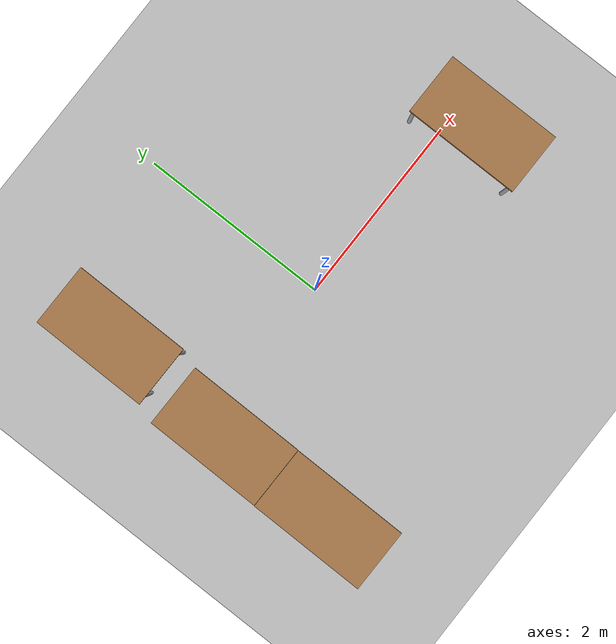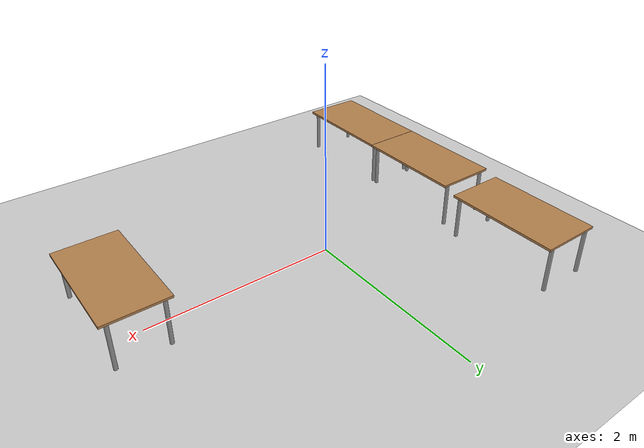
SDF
<sdf version="1.7">
 <world name="default">
  <model name="ground_plane">
   <static>1</static>
   <link name="link">
    <collision name="collision">
     <geometry><plane><normal>0 0 1</normal><size>100 100</size></plane></geometry>
     <surface>
      <contact><collide_bitmask>65535</collide_bitmask></contact>
      <friction><ode><mu>100</mu><mu2>50</mu2></ode></friction>
     </surface>
    </collision>
    <visual name="visual">
     <cast_shadows>0</cast_shadows>
     <geometry><plane><normal>0 0 1</normal><size>100 100</size></plane></geometry>
     <material>
      <script><uri>file://media/materials/scripts/gazebo.material</uri><name>Gazebo/Grey</name></script>
     </material>
    </visual>
   </link>
  </model>
  <model name="table_for_pc_clone_1">
   <link name="link">
    <inertial>
     <mass>1</mass>
     <inertia><ixx>1</ixx><ixy>0</ixy><ixz>0</ixz><iyy>1</iyy><iyz>0</iyz><izz>1</izz></inertia>
    </inertial>
    <visual name="back_right_leg">
     <pose>-0.57 -0.25 0.25 0 -0 0</pose>
     <geometry><cylinder><radius>0.02</radius><length>0.5</length></cylinder></geometry>
     <material>
      <script><uri>file://media/materials/scripts/gazebo.material</uri><name>Gazebo/Grey</name></script>
      <shader type="vertex"><normal_map>__default__</normal_map></shader>
      <ambient>0.3 0.3 0.3 1</ambient>
      <diffuse>0.7 0.7 0.7 1</diffuse>
      <specular>0.01 0.01 0.01 1</specular>
      <emissive>0 0 0 1</emissive>
     </material>
    </visual>
    <visual name="back_left_leg">
     <pose>-0.57 0.25 0.25 0 -0 0</pose>
     <geometry><cylinder><radius>0.02</radius><length>0.5</length></cylinder></geometry>
     <material>
      <script><uri>file://media/materials/scripts/gazebo.material</uri><name>Gazebo/Grey</name></script>
      <shader type="vertex"><normal_map>__default__</normal_map></shader>
      <ambient>0.3 0.3 0.3 1</ambient>
      <diffuse>0.7 0.7 0.7 1</diffuse>
      <specular>0.01 0.01 0.01 1</specular>
      <emissive>0 0 0 1</emissive>
     </material>
    </visual>
    <visual name="front_right_leg">
     <pose>0.57 -0.25 0.25 0 -0 0</pose>
     <geometry><cylinder><radius>0.02</radius><length>0.5</length></cylinder></geometry>
     <material>
      <script><uri>file://media/materials/scripts/gazebo.material</uri><name>Gazebo/Grey</name></script>
      <shader type="vertex"><normal_map>__default__</normal_map></shader>
      <ambient>0.3 0.3 0.3 1</ambient>
      <diffuse>0.7 0.7 0.7 1</diffuse>
      <specular>0.01 0.01 0.01 1</specular>
      <emissive>0 0 0 1</emissive>
     </material>
    </visual>
    <visual name="visual1">
     <pose>0 0 0.5 0 -0 0</pose>
     <geometry><box><size>1.2 0.64 0.024</size></box></geometry>
     <material>
      <script><uri>file://media/materials/scripts/gazebo.material</uri><name>Gazebo/Wood</name></script>
      <shader type="vertex"><normal_map>__default__</normal_map></shader>
      <ambient>1 1 1 1</ambient>
      <diffuse>1 1 1 1</diffuse>
      <specular>0.2 0.2 0.2 1</specular>
      <emissive>0 0 0 1</emissive>
     </material>
    </visual>
    <visual name="front_left_leg">
     <pose>0.57 0.25 0.25 0 -0 0</pose>
     <geometry><cylinder><radius>0.02</radius><length>0.5</length></cylinder></geometry>
     <material>
      <script><uri>file://media/materials/scripts/gazebo.material</uri><name>Gazebo/Grey</name></script>
      <shader type="vertex"><normal_map>__default__</normal_map></shader>
      <ambient>0.3 0.3 0.3 1</ambient>
      <diffuse>0.7 0.7 0.7 1</diffuse>
      <specular>0.01 0.01 0.01 1</specular>
      <emissive>0 0 0 1</emissive>
     </material>
    </visual>
    <collision name="surface">
     <pose>0 0 0.5 0 -0 0</pose>
     <geometry><box><size>1.2 0.64 0.024</size></box></geometry>
     <surface>
      <friction>
       <ode><mu>0.6</mu><mu2>0.6</mu2><fdir1>0 0 0</fdir1><slip1>0</slip1><slip2>0</slip2></ode>
       <torsional>
        <coefficient>1</coefficient>
        <patch_radius>0</patch_radius>
        <surface_radius>0</surface_radius>
        <use_patch_radius>1</use_patch_radius>
        <ode><slip>0</slip></ode>
       </torsional>
      </friction>
      <bounce><restitution_coefficient>0</restitution_coefficient><threshold>1e+06</threshold></bounce>
      <contact>
       <collide_without_contact>0</collide_without_contact>
       <collide_without_contact_bitmask>1</collide_without_contact_bitmask>
       <collide_bitmask>1</collide_bitmask>
       <ode>
        <soft_cfm>0</soft_cfm>
        <soft_erp>0.2</soft_erp>
        <kp>1e+13</kp>
        <kd>1</kd>
        <max_vel>0.01</max_vel>
        <min_depth>0</min_depth>
       </ode>
       <bullet>
        <split_impulse>1</split_impulse>
        <split_impulse_penetration_threshold>-0.01</split_impulse_penetration_threshold>
        <soft_cfm>0</soft_cfm>
        <soft_erp>0.2</soft_erp>
        <kp>1e+13</kp>
        <kd>1</kd>
       </bullet>
      </contact>
     </surface>
    </collision>
    <collision name="back_right_leg">
     <pose>-0.57 -0.25 0.25 0 -0 0</pose>
     <geometry><cylinder><radius>0.02</radius><length>0.5</length></cylinder></geometry>
     <surface>
      <friction>
       <ode><mu>1</mu><mu2>1</mu2><fdir1>0 0 0</fdir1><slip1>0</slip1><slip2>0</slip2></ode>
       <torsional>
        <coefficient>1</coefficient>
        <patch_radius>0</patch_radius>
        <surface_radius>0</surface_radius>
        <use_patch_radius>1</use_patch_radius>
        <ode><slip>0</slip></ode>
       </torsional>
      </friction>
      <bounce><restitution_coefficient>0</restitution_coefficient><threshold>1e+06</threshold></bounce>
      <contact>
       <collide_without_contact>0</collide_without_contact>
       <collide_without_contact_bitmask>1</collide_without_contact_bitmask>
       <collide_bitmask>1</collide_bitmask>
       <ode>
        <soft_cfm>0</soft_cfm>
        <soft_erp>0.2</soft_erp>
        <kp>1e+13</kp>
        <kd>1</kd>
        <max_vel>0.01</max_vel>
        <min_depth>0</min_depth>
       </ode>
       <bullet>
        <split_impulse>1</split_impulse>
        <split_impulse_penetration_threshold>-0.01</split_impulse_penetration_threshold>
        <soft_cfm>0</soft_cfm>
        <soft_erp>0.2</soft_erp>
        <kp>1e+13</kp>
        <kd>1</kd>
       </bullet>
      </contact>
     </surface>
    </collision>
    <collision name="front_right_leg">
     <pose>0.57 -0.25 0.25 0 -0 0</pose>
     <geometry><cylinder><radius>0.02</radius><length>0.5</length></cylinder></geometry>
     <surface>
      <friction>
       <ode><mu>1</mu><mu2>1</mu2><fdir1>0 0 0</fdir1><slip1>0</slip1><slip2>0</slip2></ode>
       <torsional>
        <coefficient>1</coefficient>
        <patch_radius>0</patch_radius>
        <surface_radius>0</surface_radius>
        <use_patch_radius>1</use_patch_radius>
        <ode><slip>0</slip></ode>
       </torsional>
      </friction>
      <bounce><restitution_coefficient>0</restitution_coefficient><threshold>1e+06</threshold></bounce>
      <contact>
       <collide_without_contact>0</collide_without_contact>
       <collide_without_contact_bitmask>1</collide_without_contact_bitmask>
       <collide_bitmask>1</collide_bitmask>
       <ode>
        <soft_cfm>0</soft_cfm>
        <soft_erp>0.2</soft_erp>
        <kp>1e+13</kp>
        <kd>1</kd>
        <max_vel>0.01</max_vel>
        <min_depth>0</min_depth>
       </ode>
       <bullet>
        <split_impulse>1</split_impulse>
        <split_impulse_penetration_threshold>-0.01</split_impulse_penetration_threshold>
        <soft_cfm>0</soft_cfm>
        <soft_erp>0.2</soft_erp>
        <kp>1e+13</kp>
        <kd>1</kd>
       </bullet>
      </contact>
     </surface>
    </collision>
    <collision name="back_left_leg">
     <pose>-0.57 0.25 0.25 0 -0 0</pose>
     <geometry><cylinder><radius>0.02</radius><length>0.5</length></cylinder></geometry>
     <surface>
      <friction>
       <ode><mu>1</mu><mu2>1</mu2><fdir1>0 0 0</fdir1><slip1>0</slip1><slip2>0</slip2></ode>
       <torsional>
        <coefficient>1</coefficient>
        <patch_radius>0</patch_radius>
        <surface_radius>0</surface_radius>
        <use_patch_radius>1</use_patch_radius>
        <ode><slip>0</slip></ode>
       </torsional>
      </friction>
      <bounce><restitution_coefficient>0</restitution_coefficient><threshold>1e+06</threshold></bounce>
      <contact>
       <collide_without_contact>0</collide_without_contact>
       <collide_without_contact_bitmask>1</collide_without_contact_bitmask>
       <collide_bitmask>1</collide_bitmask>
       <ode>
        <soft_cfm>0</soft_cfm>
        <soft_erp>0.2</soft_erp>
        <kp>1e+13</kp>
        <kd>1</kd>
        <max_vel>0.01</max_vel>
        <min_depth>0</min_depth>
       </ode>
       <bullet>
        <split_impulse>1</split_impulse>
        <split_impulse_penetration_threshold>-0.01</split_impulse_penetration_threshold>
        <soft_cfm>0</soft_cfm>
        <soft_erp>0.2</soft_erp>
        <kp>1e+13</kp>
        <kd>1</kd>
       </bullet>
      </contact>
     </surface>
    </collision>
    <collision name="front_left_leg">
     <pose>0.57 0.25 0.25 0 -0 0</pose>
     <geometry><cylinder><radius>0.02</radius><length>0.5</length></cylinder></geometry>
     <surface>
      <friction>
       <ode><mu>1</mu><mu2>1</mu2><fdir1>0 0 0</fdir1><slip1>0</slip1><slip2>0</slip2></ode>
       <torsional>
        <coefficient>1</coefficient>
        <patch_radius>0</patch_radius>
        <surface_radius>0</surface_radius>
        <use_patch_radius>1</use_patch_radius>
        <ode><slip>0</slip></ode>
       </torsional>
      </friction>
      <bounce><restitution_coefficient>0</restitution_coefficient><threshold>1e+06</threshold></bounce>
      <contact>
       <collide_without_contact>0</collide_without_contact>
       <collide_without_contact_bitmask>1</collide_without_contact_bitmask>
       <collide_bitmask>1</collide_bitmask>
       <ode>
        <soft_cfm>0</soft_cfm>
        <soft_erp>0.2</soft_erp>
        <kp>1e+13</kp>
        <kd>1</kd>
        <max_vel>0.01</max_vel>
        <min_depth>0</min_depth>
       </ode>
       <bullet>
        <split_impulse>1</split_impulse>
        <split_impulse_penetration_threshold>-0.01</split_impulse_penetration_threshold>
        <soft_cfm>0</soft_cfm>
        <soft_erp>0.2</soft_erp>
        <kp>1e+13</kp>
        <kd>1</kd>
       </bullet>
      </contact>
     </surface>
    </collision>
   </link>
   <static>1</static>
   <pose>-1.51123 1.20137 0 0 -0 1.56413</pose>
  </model>
  <model name="table_for_pc_clone_2">
   <link name="link">
    <inertial>
     <mass>1</mass>
     <inertia><ixx>1</ixx><ixy>0</ixy><ixz>0</ixz><iyy>1</iyy><iyz>0</iyz><izz>1</izz></inertia>
    </inertial>
    <visual name="back_right_leg">
     <pose>-0.57 -0.25 0.25 0 -0 0</pose>
     <geometry><cylinder><radius>0.02</radius><length>0.5</length></cylinder></geometry>
     <material>
      <script><uri>file://media/materials/scripts/gazebo.material</uri><name>Gazebo/Grey</name></script>
      <shader type="vertex"><normal_map>__default__</normal_map></shader>
      <ambient>0.3 0.3 0.3 1</ambient>
      <diffuse>0.7 0.7 0.7 1</diffuse>
      <specular>0.01 0.01 0.01 1</specular>
      <emissive>0 0 0 1</emissive>
     </material>
    </visual>
    <visual name="back_left_leg">
     <pose>-0.57 0.25 0.25 0 -0 0</pose>
     <geometry><cylinder><radius>0.02</radius><length>0.5</length></cylinder></geometry>
     <material>
      <script><uri>file://media/materials/scripts/gazebo.material</uri><name>Gazebo/Grey</name></script>
      <shader type="vertex"><normal_map>__default__</normal_map></shader>
      <ambient>0.3 0.3 0.3 1</ambient>
      <diffuse>0.7 0.7 0.7 1</diffuse>
      <specular>0.01 0.01 0.01 1</specular>
      <emissive>0 0 0 1</emissive>
     </material>
    </visual>
    <visual name="front_right_leg">
     <pose>0.57 -0.25 0.25 0 -0 0</pose>
     <geometry><cylinder><radius>0.02</radius><length>0.5</length></cylinder></geometry>
     <material>
      <script><uri>file://media/materials/scripts/gazebo.material</uri><name>Gazebo/Grey</name></script>
      <shader type="vertex"><normal_map>__default__</normal_map></shader>
      <ambient>0.3 0.3 0.3 1</ambient>
      <diffuse>0.7 0.7 0.7 1</diffuse>
      <specular>0.01 0.01 0.01 1</specular>
      <emissive>0 0 0 1</emissive>
     </material>
    </visual>
    <visual name="visual1">
     <pose>0 0 0.5 0 -0 0</pose>
     <geometry><box><size>1.2 0.64 0.024</size></box></geometry>
     <material>
      <script><uri>file://media/materials/scripts/gazebo.material</uri><name>Gazebo/Wood</name></script>
      <shader type="vertex"><normal_map>__default__</normal_map></shader>
      <ambient>1 1 1 1</ambient>
      <diffuse>1 1 1 1</diffuse>
      <specular>0.2 0.2 0.2 1</specular>
      <emissive>0 0 0 1</emissive>
     </material>
    </visual>
    <visual name="front_left_leg">
     <pose>0.57 0.25 0.25 0 -0 0</pose>
     <geometry><cylinder><radius>0.02</radius><length>0.5</length></cylinder></geometry>
     <material>
      <script><uri>file://media/materials/scripts/gazebo.material</uri><name>Gazebo/Grey</name></script>
      <shader type="vertex"><normal_map>__default__</normal_map></shader>
      <ambient>0.3 0.3 0.3 1</ambient>
      <diffuse>0.7 0.7 0.7 1</diffuse>
      <specular>0.01 0.01 0.01 1</specular>
      <emissive>0 0 0 1</emissive>
     </material>
    </visual>
    <collision name="surface">
     <pose>0 0 0.5 0 -0 0</pose>
     <geometry><box><size>1.2 0.64 0.024</size></box></geometry>
     <surface>
      <friction>
       <ode><mu>0.6</mu><mu2>0.6</mu2><fdir1>0 0 0</fdir1><slip1>0</slip1><slip2>0</slip2></ode>
       <torsional>
        <coefficient>1</coefficient>
        <patch_radius>0</patch_radius>
        <surface_radius>0</surface_radius>
        <use_patch_radius>1</use_patch_radius>
        <ode><slip>0</slip></ode>
       </torsional>
      </friction>
      <bounce><restitution_coefficient>0</restitution_coefficient><threshold>1e+06</threshold></bounce>
      <contact>
       <collide_without_contact>0</collide_without_contact>
       <collide_without_contact_bitmask>1</collide_without_contact_bitmask>
       <collide_bitmask>1</collide_bitmask>
       <ode>
        <soft_cfm>0</soft_cfm>
        <soft_erp>0.2</soft_erp>
        <kp>1e+13</kp>
        <kd>1</kd>
        <max_vel>0.01</max_vel>
        <min_depth>0</min_depth>
       </ode>
       <bullet>
        <split_impulse>1</split_impulse>
        <split_impulse_penetration_threshold>-0.01</split_impulse_penetration_threshold>
        <soft_cfm>0</soft_cfm>
        <soft_erp>0.2</soft_erp>
        <kp>1e+13</kp>
        <kd>1</kd>
       </bullet>
      </contact>
     </surface>
    </collision>
    <collision name="back_right_leg">
     <pose>-0.57 -0.25 0.25 0 -0 0</pose>
     <geometry><cylinder><radius>0.02</radius><length>0.5</length></cylinder></geometry>
     <surface>
      <friction>
       <ode><mu>1</mu><mu2>1</mu2><fdir1>0 0 0</fdir1><slip1>0</slip1><slip2>0</slip2></ode>
       <torsional>
        <coefficient>1</coefficient>
        <patch_radius>0</patch_radius>
        <surface_radius>0</surface_radius>
        <use_patch_radius>1</use_patch_radius>
        <ode><slip>0</slip></ode>
       </torsional>
      </friction>
      <bounce><restitution_coefficient>0</restitution_coefficient><threshold>1e+06</threshold></bounce>
      <contact>
       <collide_without_contact>0</collide_without_contact>
       <collide_without_contact_bitmask>1</collide_without_contact_bitmask>
       <collide_bitmask>1</collide_bitmask>
       <ode>
        <soft_cfm>0</soft_cfm>
        <soft_erp>0.2</soft_erp>
        <kp>1e+13</kp>
        <kd>1</kd>
        <max_vel>0.01</max_vel>
        <min_depth>0</min_depth>
       </ode>
       <bullet>
        <split_impulse>1</split_impulse>
        <split_impulse_penetration_threshold>-0.01</split_impulse_penetration_threshold>
        <soft_cfm>0</soft_cfm>
        <soft_erp>0.2</soft_erp>
        <kp>1e+13</kp>
        <kd>1</kd>
       </bullet>
      </contact>
     </surface>
    </collision>
    <collision name="front_right_leg">
     <pose>0.57 -0.25 0.25 0 -0 0</pose>
     <geometry><cylinder><radius>0.02</radius><length>0.5</length></cylinder></geometry>
     <surface>
      <friction>
       <ode><mu>1</mu><mu2>1</mu2><fdir1>0 0 0</fdir1><slip1>0</slip1><slip2>0</slip2></ode>
       <torsional>
        <coefficient>1</coefficient>
        <patch_radius>0</patch_radius>
        <surface_radius>0</surface_radius>
        <use_patch_radius>1</use_patch_radius>
        <ode><slip>0</slip></ode>
       </torsional>
      </friction>
      <bounce><restitution_coefficient>0</restitution_coefficient><threshold>1e+06</threshold></bounce>
      <contact>
       <collide_without_contact>0</collide_without_contact>
       <collide_without_contact_bitmask>1</collide_without_contact_bitmask>
       <collide_bitmask>1</collide_bitmask>
       <ode>
        <soft_cfm>0</soft_cfm>
        <soft_erp>0.2</soft_erp>
        <kp>1e+13</kp>
        <kd>1</kd>
        <max_vel>0.01</max_vel>
        <min_depth>0</min_depth>
       </ode>
       <bullet>
        <split_impulse>1</split_impulse>
        <split_impulse_penetration_threshold>-0.01</split_impulse_penetration_threshold>
        <soft_cfm>0</soft_cfm>
        <soft_erp>0.2</soft_erp>
        <kp>1e+13</kp>
        <kd>1</kd>
       </bullet>
      </contact>
     </surface>
    </collision>
    <collision name="back_left_leg">
     <pose>-0.57 0.25 0.25 0 -0 0</pose>
     <geometry><cylinder><radius>0.02</radius><length>0.5</length></cylinder></geometry>
     <surface>
      <friction>
       <ode><mu>1</mu><mu2>1</mu2><fdir1>0 0 0</fdir1><slip1>0</slip1><slip2>0</slip2></ode>
       <torsional>
        <coefficient>1</coefficient>
        <patch_radius>0</patch_radius>
        <surface_radius>0</surface_radius>
        <use_patch_radius>1</use_patch_radius>
        <ode><slip>0</slip></ode>
       </torsional>
      </friction>
      <bounce><restitution_coefficient>0</restitution_coefficient><threshold>1e+06</threshold></bounce>
      <contact>
       <collide_without_contact>0</collide_without_contact>
       <collide_without_contact_bitmask>1</collide_without_contact_bitmask>
       <collide_bitmask>1</collide_bitmask>
       <ode>
        <soft_cfm>0</soft_cfm>
        <soft_erp>0.2</soft_erp>
        <kp>1e+13</kp>
        <kd>1</kd>
        <max_vel>0.01</max_vel>
        <min_depth>0</min_depth>
       </ode>
       <bullet>
        <split_impulse>1</split_impulse>
        <split_impulse_penetration_threshold>-0.01</split_impulse_penetration_threshold>
        <soft_cfm>0</soft_cfm>
        <soft_erp>0.2</soft_erp>
        <kp>1e+13</kp>
        <kd>1</kd>
       </bullet>
      </contact>
     </surface>
    </collision>
    <collision name="front_left_leg">
     <pose>0.57 0.25 0.25 0 -0 0</pose>
     <geometry><cylinder><radius>0.02</radius><length>0.5</length></cylinder></geometry>
     <surface>
      <friction>
       <ode><mu>1</mu><mu2>1</mu2><fdir1>0 0 0</fdir1><slip1>0</slip1><slip2>0</slip2></ode>
       <torsional>
        <coefficient>1</coefficient>
        <patch_radius>0</patch_radius>
        <surface_radius>0</surface_radius>
        <use_patch_radius>1</use_patch_radius>
        <ode><slip>0</slip></ode>
       </torsional>
      </friction>
      <bounce><restitution_coefficient>0</restitution_coefficient><threshold>1e+06</threshold></bounce>
      <contact>
       <collide_without_contact>0</collide_without_contact>
       <collide_without_contact_bitmask>1</collide_without_contact_bitmask>
       <collide_bitmask>1</collide_bitmask>
       <ode>
        <soft_cfm>0</soft_cfm>
        <soft_erp>0.2</soft_erp>
        <kp>1e+13</kp>
        <kd>1</kd>
        <max_vel>0.01</max_vel>
        <min_depth>0</min_depth>
       </ode>
       <bullet>
        <split_impulse>1</split_impulse>
        <split_impulse_penetration_threshold>-0.01</split_impulse_penetration_threshold>
        <soft_cfm>0</soft_cfm>
        <soft_erp>0.2</soft_erp>
        <kp>1e+13</kp>
        <kd>1</kd>
       </bullet>
      </contact>
     </surface>
    </collision>
   </link>
   <static>1</static>
   <pose>-1.58534 -0.185187 0 0 -0 1.56413</pose>
  </model>
  <model name="table_for_pc_clone_3">
   <link name="link">
    <inertial>
     <mass>1</mass>
     <inertia><ixx>1</ixx><ixy>0</ixy><ixz>0</ixz><iyy>1</iyy><iyz>0</iyz><izz>1</izz></inertia>
    </inertial>
    <visual name="back_right_leg">
     <pose>-0.57 -0.25 0.25 0 -0 0</pose>
     <geometry><cylinder><radius>0.02</radius><length>0.5</length></cylinder></geometry>
     <material>
      <script><uri>file://media/materials/scripts/gazebo.material</uri><name>Gazebo/Grey</name></script>
      <shader type="vertex"><normal_map>__default__</normal_map></shader>
      <ambient>0.3 0.3 0.3 1</ambient>
      <diffuse>0.7 0.7 0.7 1</diffuse>
      <specular>0.01 0.01 0.01 1</specular>
      <emissive>0 0 0 1</emissive>
     </material>
    </visual>
    <visual name="back_left_leg">
     <pose>-0.57 0.25 0.25 0 -0 0</pose>
     <geometry><cylinder><radius>0.02</radius><length>0.5</length></cylinder></geometry>
     <material>
      <script><uri>file://media/materials/scripts/gazebo.material</uri><name>Gazebo/Grey</name></script>
      <shader type="vertex"><normal_map>__default__</normal_map></shader>
      <ambient>0.3 0.3 0.3 1</ambient>
      <diffuse>0.7 0.7 0.7 1</diffuse>
      <specular>0.01 0.01 0.01 1</specular>
      <emissive>0 0 0 1</emissive>
     </material>
    </visual>
    <visual name="front_right_leg">
     <pose>0.57 -0.25 0.25 0 -0 0</pose>
     <geometry><cylinder><radius>0.02</radius><length>0.5</length></cylinder></geometry>
     <material>
      <script><uri>file://media/materials/scripts/gazebo.material</uri><name>Gazebo/Grey</name></script>
      <shader type="vertex"><normal_map>__default__</normal_map></shader>
      <ambient>0.3 0.3 0.3 1</ambient>
      <diffuse>0.7 0.7 0.7 1</diffuse>
      <specular>0.01 0.01 0.01 1</specular>
      <emissive>0 0 0 1</emissive>
     </material>
    </visual>
    <visual name="visual1">
     <pose>0 0 0.5 0 -0 0</pose>
     <geometry><box><size>1.2 0.64 0.024</size></box></geometry>
     <material>
      <script><uri>file://media/materials/scripts/gazebo.material</uri><name>Gazebo/Wood</name></script>
      <shader type="vertex"><normal_map>__default__</normal_map></shader>
      <ambient>1 1 1 1</ambient>
      <diffuse>1 1 1 1</diffuse>
      <specular>0.2 0.2 0.2 1</specular>
      <emissive>0 0 0 1</emissive>
     </material>
    </visual>
    <visual name="front_left_leg">
     <pose>0.57 0.25 0.25 0 -0 0</pose>
     <geometry><cylinder><radius>0.02</radius><length>0.5</length></cylinder></geometry>
     <material>
      <script><uri>file://media/materials/scripts/gazebo.material</uri><name>Gazebo/Grey</name></script>
      <shader type="vertex"><normal_map>__default__</normal_map></shader>
      <ambient>0.3 0.3 0.3 1</ambient>
      <diffuse>0.7 0.7 0.7 1</diffuse>
      <specular>0.01 0.01 0.01 1</specular>
      <emissive>0 0 0 1</emissive>
     </material>
    </visual>
    <collision name="surface">
     <pose>0 0 0.5 0 -0 0</pose>
     <geometry><box><size>1.2 0.64 0.024</size></box></geometry>
     <surface>
      <friction>
       <ode><mu>0.6</mu><mu2>0.6</mu2><fdir1>0 0 0</fdir1><slip1>0</slip1><slip2>0</slip2></ode>
       <torsional>
        <coefficient>1</coefficient>
        <patch_radius>0</patch_radius>
        <surface_radius>0</surface_radius>
        <use_patch_radius>1</use_patch_radius>
        <ode><slip>0</slip></ode>
       </torsional>
      </friction>
      <bounce><restitution_coefficient>0</restitution_coefficient><threshold>1e+06</threshold></bounce>
      <contact>
       <collide_without_contact>0</collide_without_contact>
       <collide_without_contact_bitmask>1</collide_without_contact_bitmask>
       <collide_bitmask>1</collide_bitmask>
       <ode>
        <soft_cfm>0</soft_cfm>
        <soft_erp>0.2</soft_erp>
        <kp>1e+13</kp>
        <kd>1</kd>
        <max_vel>0.01</max_vel>
        <min_depth>0</min_depth>
       </ode>
       <bullet>
        <split_impulse>1</split_impulse>
        <split_impulse_penetration_threshold>-0.01</split_impulse_penetration_threshold>
        <soft_cfm>0</soft_cfm>
        <soft_erp>0.2</soft_erp>
        <kp>1e+13</kp>
        <kd>1</kd>
       </bullet>
      </contact>
     </surface>
    </collision>
    <collision name="back_right_leg">
     <pose>-0.57 -0.25 0.25 0 -0 0</pose>
     <geometry><cylinder><radius>0.02</radius><length>0.5</length></cylinder></geometry>
     <surface>
      <friction>
       <ode><mu>1</mu><mu2>1</mu2><fdir1>0 0 0</fdir1><slip1>0</slip1><slip2>0</slip2></ode>
       <torsional>
        <coefficient>1</coefficient>
        <patch_radius>0</patch_radius>
        <surface_radius>0</surface_radius>
        <use_patch_radius>1</use_patch_radius>
        <ode><slip>0</slip></ode>
       </torsional>
      </friction>
      <bounce><restitution_coefficient>0</restitution_coefficient><threshold>1e+06</threshold></bounce>
      <contact>
       <collide_without_contact>0</collide_without_contact>
       <collide_without_contact_bitmask>1</collide_without_contact_bitmask>
       <collide_bitmask>1</collide_bitmask>
       <ode>
        <soft_cfm>0</soft_cfm>
        <soft_erp>0.2</soft_erp>
        <kp>1e+13</kp>
        <kd>1</kd>
        <max_vel>0.01</max_vel>
        <min_depth>0</min_depth>
       </ode>
       <bullet>
        <split_impulse>1</split_impulse>
        <split_impulse_penetration_threshold>-0.01</split_impulse_penetration_threshold>
        <soft_cfm>0</soft_cfm>
        <soft_erp>0.2</soft_erp>
        <kp>1e+13</kp>
        <kd>1</kd>
       </bullet>
      </contact>
     </surface>
    </collision>
    <collision name="front_right_leg">
     <pose>0.57 -0.25 0.25 0 -0 0</pose>
     <geometry><cylinder><radius>0.02</radius><length>0.5</length></cylinder></geometry>
     <surface>
      <friction>
       <ode><mu>1</mu><mu2>1</mu2><fdir1>0 0 0</fdir1><slip1>0</slip1><slip2>0</slip2></ode>
       <torsional>
        <coefficient>1</coefficient>
        <patch_radius>0</patch_radius>
        <surface_radius>0</surface_radius>
        <use_patch_radius>1</use_patch_radius>
        <ode><slip>0</slip></ode>
       </torsional>
      </friction>
      <bounce><restitution_coefficient>0</restitution_coefficient><threshold>1e+06</threshold></bounce>
      <contact>
       <collide_without_contact>0</collide_without_contact>
       <collide_without_contact_bitmask>1</collide_without_contact_bitmask>
       <collide_bitmask>1</collide_bitmask>
       <ode>
        <soft_cfm>0</soft_cfm>
        <soft_erp>0.2</soft_erp>
        <kp>1e+13</kp>
        <kd>1</kd>
        <max_vel>0.01</max_vel>
        <min_depth>0</min_depth>
       </ode>
       <bullet>
        <split_impulse>1</split_impulse>
        <split_impulse_penetration_threshold>-0.01</split_impulse_penetration_threshold>
        <soft_cfm>0</soft_cfm>
        <soft_erp>0.2</soft_erp>
        <kp>1e+13</kp>
        <kd>1</kd>
       </bullet>
      </contact>
     </surface>
    </collision>
    <collision name="back_left_leg">
     <pose>-0.57 0.25 0.25 0 -0 0</pose>
     <geometry><cylinder><radius>0.02</radius><length>0.5</length></cylinder></geometry>
     <surface>
      <friction>
       <ode><mu>1</mu><mu2>1</mu2><fdir1>0 0 0</fdir1><slip1>0</slip1><slip2>0</slip2></ode>
       <torsional>
        <coefficient>1</coefficient>
        <patch_radius>0</patch_radius>
        <surface_radius>0</surface_radius>
        <use_patch_radius>1</use_patch_radius>
        <ode><slip>0</slip></ode>
       </torsional>
      </friction>
      <bounce><restitution_coefficient>0</restitution_coefficient><threshold>1e+06</threshold></bounce>
      <contact>
       <collide_without_contact>0</collide_without_contact>
       <collide_without_contact_bitmask>1</collide_without_contact_bitmask>
       <collide_bitmask>1</collide_bitmask>
       <ode>
        <soft_cfm>0</soft_cfm>
        <soft_erp>0.2</soft_erp>
        <kp>1e+13</kp>
        <kd>1</kd>
        <max_vel>0.01</max_vel>
        <min_depth>0</min_depth>
       </ode>
       <bullet>
        <split_impulse>1</split_impulse>
        <split_impulse_penetration_threshold>-0.01</split_impulse_penetration_threshold>
        <soft_cfm>0</soft_cfm>
        <soft_erp>0.2</soft_erp>
        <kp>1e+13</kp>
        <kd>1</kd>
       </bullet>
      </contact>
     </surface>
    </collision>
    <collision name="front_left_leg">
     <pose>0.57 0.25 0.25 0 -0 0</pose>
     <geometry><cylinder><radius>0.02</radius><length>0.5</length></cylinder></geometry>
     <surface>
      <friction>
       <ode><mu>1</mu><mu2>1</mu2><fdir1>0 0 0</fdir1><slip1>0</slip1><slip2>0</slip2></ode>
       <torsional>
        <coefficient>1</coefficient>
        <patch_radius>0</patch_radius>
        <surface_radius>0</surface_radius>
        <use_patch_radius>1</use_patch_radius>
        <ode><slip>0</slip></ode>
       </torsional>
      </friction>
      <bounce><restitution_coefficient>0</restitution_coefficient><threshold>1e+06</threshold></bounce>
      <contact>
       <collide_without_contact>0</collide_without_contact>
       <collide_without_contact_bitmask>1</collide_without_contact_bitmask>
       <collide_bitmask>1</collide_bitmask>
       <ode>
        <soft_cfm>0</soft_cfm>
        <soft_erp>0.2</soft_erp>
        <kp>1e+13</kp>
        <kd>1</kd>
        <max_vel>0.01</max_vel>
        <min_depth>0</min_depth>
       </ode>
       <bullet>
        <split_impulse>1</split_impulse>
        <split_impulse_penetration_threshold>-0.01</split_impulse_penetration_threshold>
        <soft_cfm>0</soft_cfm>
        <soft_erp>0.2</soft_erp>
        <kp>1e+13</kp>
        <kd>1</kd>
       </bullet>
      </contact>
     </surface>
    </collision>
   </link>
   <static>1</static>
   <pose>-1.5958 -1.38827 0 0 -0 1.56413</pose>
  </model>
  <model name="table_for_pc_clone_10_clone_clone_clone">
   <link name="link">
    <inertial>
     <mass>1</mass>
     <inertia><ixx>1</ixx><ixy>0</ixy><ixz>0</ixz><iyy>1</iyy><iyz>0</iyz><izz>1</izz></inertia>
    </inertial>
    <visual name="back_right_leg">
     <pose>-0.57 -0.25 0.25 0 -0 0</pose>
     <geometry><cylinder><radius>0.02</radius><length>0.5</length></cylinder></geometry>
     <material>
      <script><uri>file://media/materials/scripts/gazebo.material</uri><name>Gazebo/Grey</name></script>
      <shader type="vertex"><normal_map>__default__</normal_map></shader>
      <ambient>0.3 0.3 0.3 1</ambient>
      <diffuse>0.7 0.7 0.7 1</diffuse>
      <specular>0.01 0.01 0.01 1</specular>
      <emissive>0 0 0 1</emissive>
     </material>
    </visual>
    <visual name="back_left_leg">
     <pose>-0.57 0.25 0.25 0 -0 0</pose>
     <geometry><cylinder><radius>0.02</radius><length>0.5</length></cylinder></geometry>
     <material>
      <script><uri>file://media/materials/scripts/gazebo.material</uri><name>Gazebo/Grey</name></script>
      <shader type="vertex"><normal_map>__default__</normal_map></shader>
      <ambient>0.3 0.3 0.3 1</ambient>
      <diffuse>0.7 0.7 0.7 1</diffuse>
      <specular>0.01 0.01 0.01 1</specular>
      <emissive>0 0 0 1</emissive>
     </material>
    </visual>
    <visual name="front_right_leg">
     <pose>0.57 -0.25 0.25 0 -0 0</pose>
     <geometry><cylinder><radius>0.02</radius><length>0.5</length></cylinder></geometry>
     <material>
      <script><uri>file://media/materials/scripts/gazebo.material</uri><name>Gazebo/Grey</name></script>
      <shader type="vertex"><normal_map>__default__</normal_map></shader>
      <ambient>0.3 0.3 0.3 1</ambient>
      <diffuse>0.7 0.7 0.7 1</diffuse>
      <specular>0.01 0.01 0.01 1</specular>
      <emissive>0 0 0 1</emissive>
     </material>
    </visual>
    <visual name="visual1">
     <pose>0 0 0.5 0 -0 0</pose>
     <geometry><box><size>1.2 0.64 0.024</size></box></geometry>
     <material>
      <script><uri>file://media/materials/scripts/gazebo.material</uri><name>Gazebo/Wood</name></script>
      <shader type="vertex"><normal_map>__default__</normal_map></shader>
      <ambient>1 1 1 1</ambient>
      <diffuse>1 1 1 1</diffuse>
      <specular>0.2 0.2 0.2 1</specular>
      <emissive>0 0 0 1</emissive>
     </material>
    </visual>
    <visual name="front_left_leg">
     <pose>0.57 0.25 0.25 0 -0 0</pose>
     <geometry><cylinder><radius>0.02</radius><length>0.5</length></cylinder></geometry>
     <material>
      <script><uri>file://media/materials/scripts/gazebo.material</uri><name>Gazebo/Grey</name></script>
      <shader type="vertex"><normal_map>__default__</normal_map></shader>
      <ambient>0.3 0.3 0.3 1</ambient>
      <diffuse>0.7 0.7 0.7 1</diffuse>
      <specular>0.01 0.01 0.01 1</specular>
      <emissive>0 0 0 1</emissive>
     </material>
    </visual>
    <collision name="surface">
     <pose>0 0 0.5 0 -0 0</pose>
     <geometry><box><size>1.2 0.64 0.024</size></box></geometry>
     <surface>
      <friction>
       <ode><mu>0.6</mu><mu2>0.6</mu2><fdir1>0 0 0</fdir1><slip1>0</slip1><slip2>0</slip2></ode>
       <torsional>
        <coefficient>1</coefficient>
        <patch_radius>0</patch_radius>
        <surface_radius>0</surface_radius>
        <use_patch_radius>1</use_patch_radius>
        <ode><slip>0</slip></ode>
       </torsional>
      </friction>
      <bounce><restitution_coefficient>0</restitution_coefficient><threshold>1e+06</threshold></bounce>
      <contact>
       <collide_without_contact>0</collide_without_contact>
       <collide_without_contact_bitmask>1</collide_without_contact_bitmask>
       <collide_bitmask>1</collide_bitmask>
       <ode>
        <soft_cfm>0</soft_cfm>
        <soft_erp>0.2</soft_erp>
        <kp>1e+13</kp>
        <kd>1</kd>
        <max_vel>0.01</max_vel>
        <min_depth>0</min_depth>
       </ode>
       <bullet>
        <split_impulse>1</split_impulse>
        <split_impulse_penetration_threshold>-0.01</split_impulse_penetration_threshold>
        <soft_cfm>0</soft_cfm>
        <soft_erp>0.2</soft_erp>
        <kp>1e+13</kp>
        <kd>1</kd>
       </bullet>
      </contact>
     </surface>
    </collision>
    <collision name="back_right_leg">
     <pose>-0.57 -0.25 0.25 0 -0 0</pose>
     <geometry><cylinder><radius>0.02</radius><length>0.5</length></cylinder></geometry>
     <surface>
      <friction>
       <ode><mu>1</mu><mu2>1</mu2><fdir1>0 0 0</fdir1><slip1>0</slip1><slip2>0</slip2></ode>
       <torsional>
        <coefficient>1</coefficient>
        <patch_radius>0</patch_radius>
        <surface_radius>0</surface_radius>
        <use_patch_radius>1</use_patch_radius>
        <ode><slip>0</slip></ode>
       </torsional>
      </friction>
      <bounce><restitution_coefficient>0</restitution_coefficient><threshold>1e+06</threshold></bounce>
      <contact>
       <collide_without_contact>0</collide_without_contact>
       <collide_without_contact_bitmask>1</collide_without_contact_bitmask>
       <collide_bitmask>1</collide_bitmask>
       <ode>
        <soft_cfm>0</soft_cfm>
        <soft_erp>0.2</soft_erp>
        <kp>1e+13</kp>
        <kd>1</kd>
        <max_vel>0.01</max_vel>
        <min_depth>0</min_depth>
       </ode>
       <bullet>
        <split_impulse>1</split_impulse>
        <split_impulse_penetration_threshold>-0.01</split_impulse_penetration_threshold>
        <soft_cfm>0</soft_cfm>
        <soft_erp>0.2</soft_erp>
        <kp>1e+13</kp>
        <kd>1</kd>
       </bullet>
      </contact>
     </surface>
    </collision>
    <collision name="front_right_leg">
     <pose>0.57 -0.25 0.25 0 -0 0</pose>
     <geometry><cylinder><radius>0.02</radius><length>0.5</length></cylinder></geometry>
     <surface>
      <friction>
       <ode><mu>1</mu><mu2>1</mu2><fdir1>0 0 0</fdir1><slip1>0</slip1><slip2>0</slip2></ode>
       <torsional>
        <coefficient>1</coefficient>
        <patch_radius>0</patch_radius>
        <surface_radius>0</surface_radius>
        <use_patch_radius>1</use_patch_radius>
        <ode><slip>0</slip></ode>
       </torsional>
      </friction>
      <bounce><restitution_coefficient>0</restitution_coefficient><threshold>1e+06</threshold></bounce>
      <contact>
       <collide_without_contact>0</collide_without_contact>
       <collide_without_contact_bitmask>1</collide_without_contact_bitmask>
       <collide_bitmask>1</collide_bitmask>
       <ode>
        <soft_cfm>0</soft_cfm>
        <soft_erp>0.2</soft_erp>
        <kp>1e+13</kp>
        <kd>1</kd>
        <max_vel>0.01</max_vel>
        <min_depth>0</min_depth>
       </ode>
       <bullet>
        <split_impulse>1</split_impulse>
        <split_impulse_penetration_threshold>-0.01</split_impulse_penetration_threshold>
        <soft_cfm>0</soft_cfm>
        <soft_erp>0.2</soft_erp>
        <kp>1e+13</kp>
        <kd>1</kd>
       </bullet>
      </contact>
     </surface>
    </collision>
    <collision name="back_left_leg">
     <pose>-0.57 0.25 0.25 0 -0 0</pose>
     <geometry><cylinder><radius>0.02</radius><length>0.5</length></cylinder></geometry>
     <surface>
      <friction>
       <ode><mu>1</mu><mu2>1</mu2><fdir1>0 0 0</fdir1><slip1>0</slip1><slip2>0</slip2></ode>
       <torsional>
        <coefficient>1</coefficient>
        <patch_radius>0</patch_radius>
        <surface_radius>0</surface_radius>
        <use_patch_radius>1</use_patch_radius>
        <ode><slip>0</slip></ode>
       </torsional>
      </friction>
      <bounce><restitution_coefficient>0</restitution_coefficient><threshold>1e+06</threshold></bounce>
      <contact>
       <collide_without_contact>0</collide_without_contact>
       <collide_without_contact_bitmask>1</collide_without_contact_bitmask>
       <collide_bitmask>1</collide_bitmask>
       <ode>
        <soft_cfm>0</soft_cfm>
        <soft_erp>0.2</soft_erp>
        <kp>1e+13</kp>
        <kd>1</kd>
        <max_vel>0.01</max_vel>
        <min_depth>0</min_depth>
       </ode>
       <bullet>
        <split_impulse>1</split_impulse>
        <split_impulse_penetration_threshold>-0.01</split_impulse_penetration_threshold>
        <soft_cfm>0</soft_cfm>
        <soft_erp>0.2</soft_erp>
        <kp>1e+13</kp>
        <kd>1</kd>
       </bullet>
      </contact>
     </surface>
    </collision>
    <collision name="front_left_leg">
     <pose>0.57 0.25 0.25 0 -0 0</pose>
     <geometry><cylinder><radius>0.02</radius><length>0.5</length></cylinder></geometry>
     <surface>
      <friction>
       <ode><mu>1</mu><mu2>1</mu2><fdir1>0 0 0</fdir1><slip1>0</slip1><slip2>0</slip2></ode>
       <torsional>
        <coefficient>1</coefficient>
        <patch_radius>0</patch_radius>
        <surface_radius>0</surface_radius>
        <use_patch_radius>1</use_patch_radius>
        <ode><slip>0</slip></ode>
       </torsional>
      </friction>
      <bounce><restitution_coefficient>0</restitution_coefficient><threshold>1e+06</threshold></bounce>
      <contact>
       <collide_without_contact>0</collide_without_contact>
       <collide_without_contact_bitmask>1</collide_without_contact_bitmask>
       <collide_bitmask>1</collide_bitmask>
       <ode>
        <soft_cfm>0</soft_cfm>
        <soft_erp>0.2</soft_erp>
        <kp>1e+13</kp>
        <kd>1</kd>
        <max_vel>0.01</max_vel>
        <min_depth>0</min_depth>
       </ode>
       <bullet>
        <split_impulse>1</split_impulse>
        <split_impulse_penetration_threshold>-0.01</split_impulse_penetration_threshold>
        <soft_cfm>0</soft_cfm>
        <soft_erp>0.2</soft_erp>
        <kp>1e+13</kp>
        <kd>1</kd>
       </bullet>
      </contact>
     </surface>
    </collision>
   </link>
   <static>1</static>
   <pose>2.11598 -0.274651 0 0 -0 1.56788</pose>
  </model>
 </world>
</sdf>
